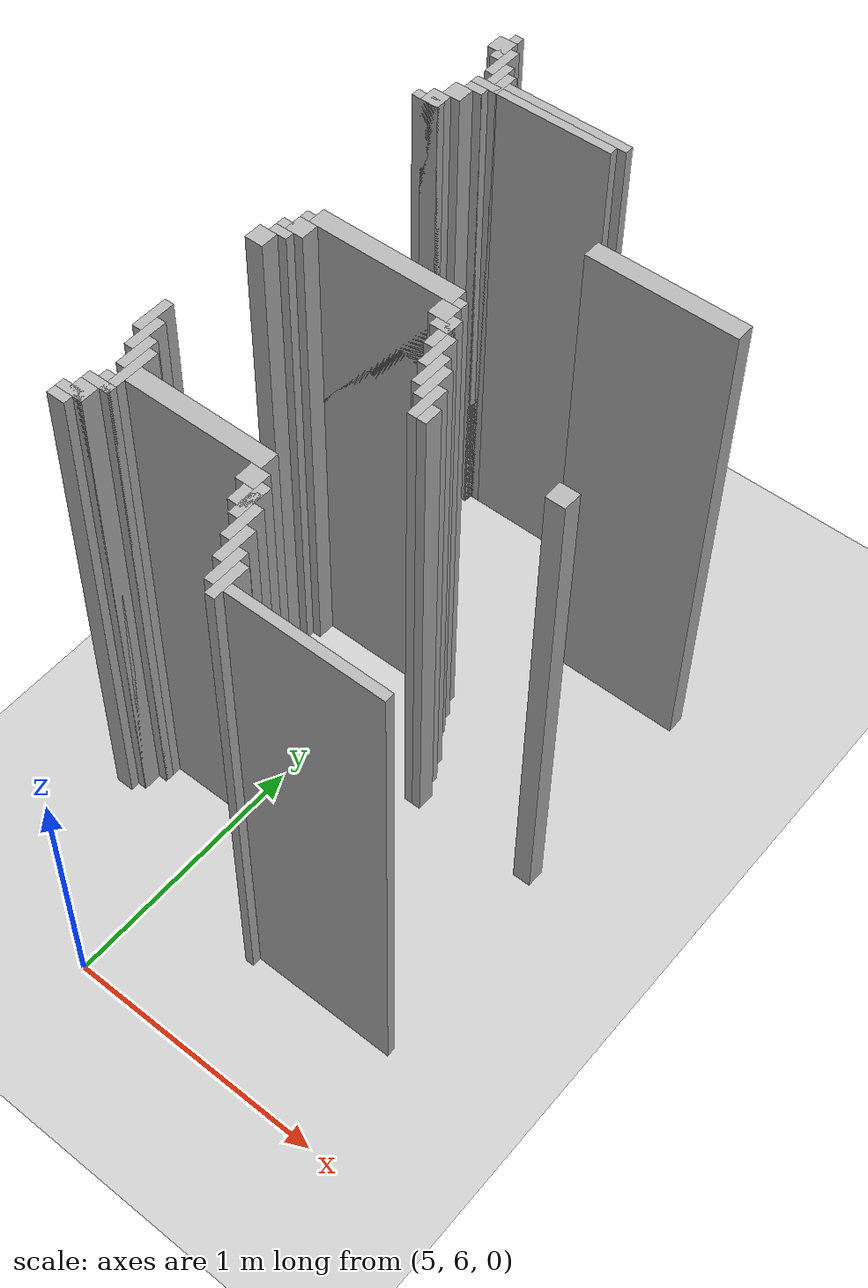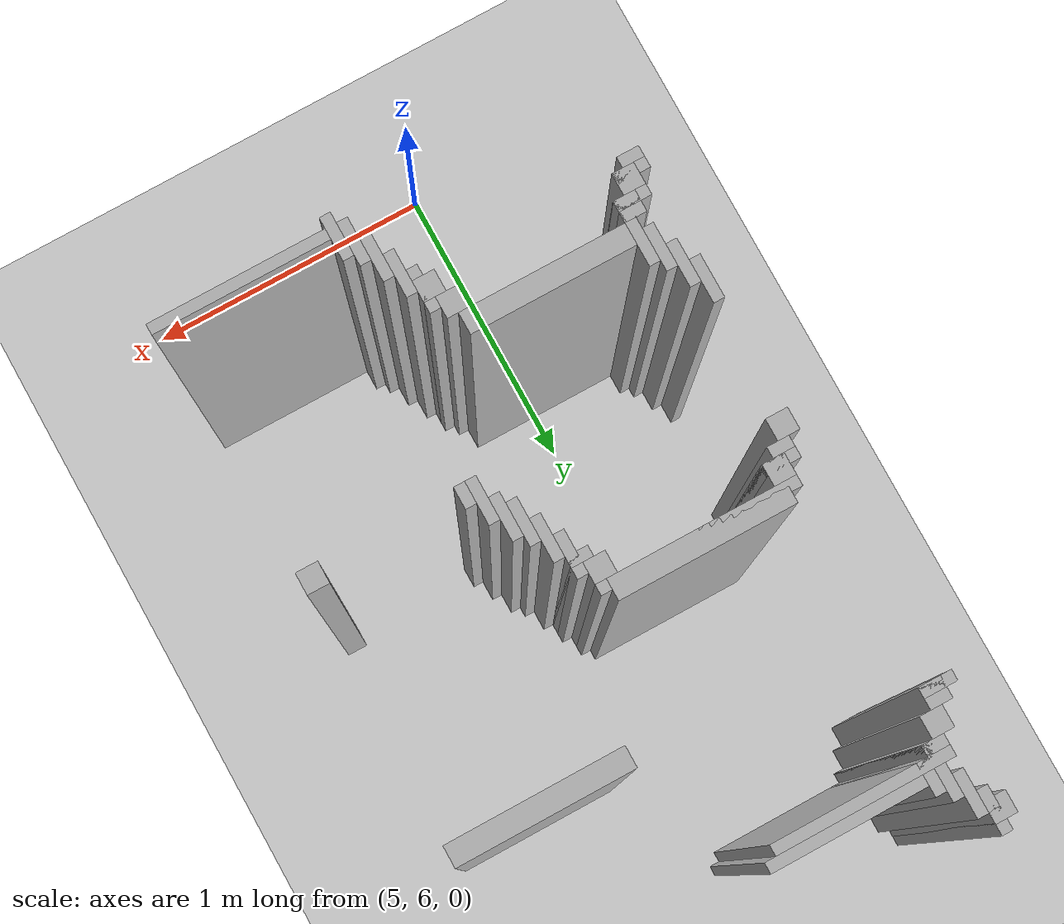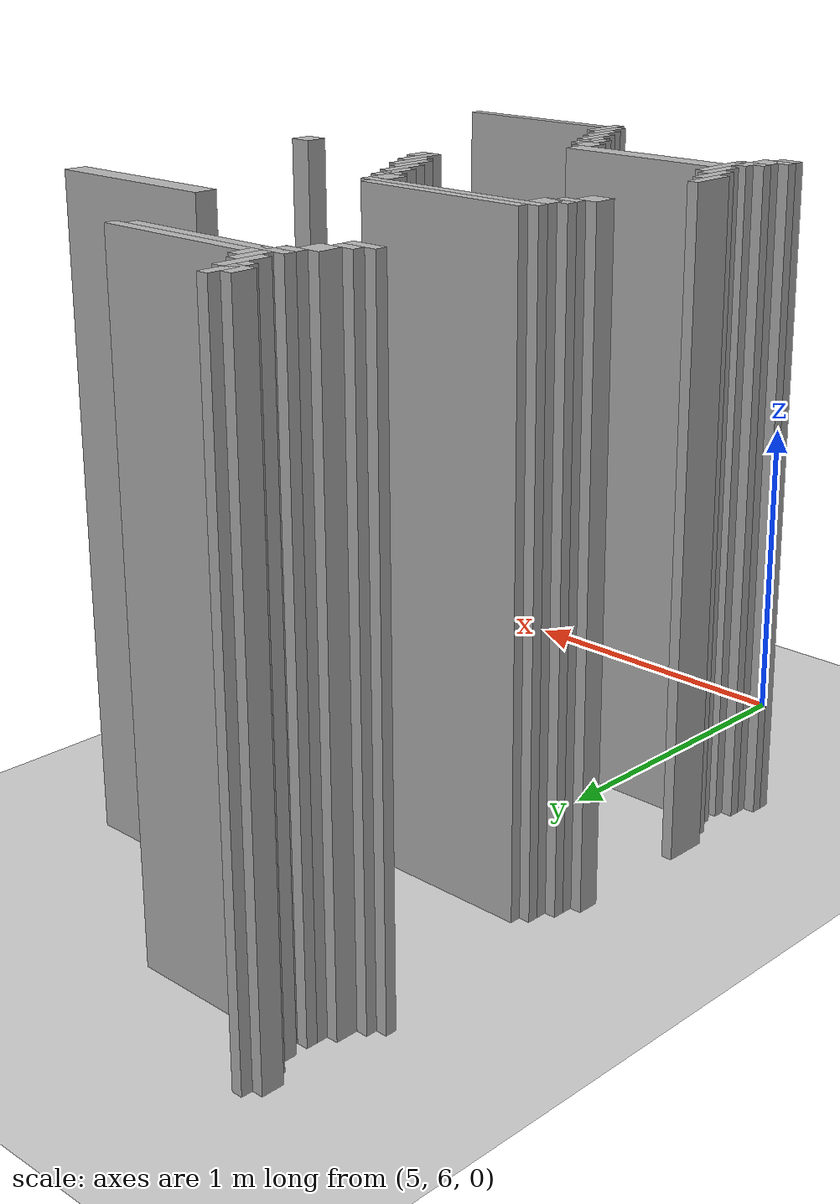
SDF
<sdf version="1.6">
 <world name="slam_world">
  <model name="ground_plane">
   <static>true</static>
   <link name="link">
    <collision name="collision">
     <geometry><plane><normal>0 0 1</normal><size>100 100</size></plane></geometry>
    </collision>
    <visual name="visual">
     <geometry><plane><normal>0 0 1</normal><size>100 100</size></plane></geometry>
     <material>
      <ambient>0.8 0.8 0.8 1</ambient>
      <diffuse>0.8 0.8 0.8 1</diffuse>
      <specular>0.8 0.8 0.8 1</specular>
     </material>
    </visual>
   </link>
  </model>
  <model name="wall_2893">
   <static>true</static>
   <pose>4.611368909512761 8.665893271461716 1.0 0 0 0</pose>
   <link name="link">
    <collision name="collision">
     <geometry><box><size>0.03480278422273782 0.13921113689095127 2.0</size></box></geometry>
    </collision>
    <visual name="visual">
     <geometry><box><size>0.03480278422273782 0.13921113689095127 2.0</size></box></geometry>
     <material><ambient>0.5 0.5 0.5 1</ambient><diffuse>0.7 0.7 0.7 1</diffuse></material>
    </visual>
   </link>
  </model>
  <model name="wall_2907">
   <static>true</static>
   <pose>4.593967517401392 8.665893271461716 1.0 0 0 0</pose>
   <link name="link">
    <collision name="collision">
     <geometry><box><size>0.06960556844547564 0.06960556844547564 2.0</size></box></geometry>
    </collision>
    <visual name="visual">
     <geometry><box><size>0.06960556844547564 0.06960556844547564 2.0</size></box></geometry>
     <material><ambient>0.5 0.5 0.5 1</ambient><diffuse>0.7 0.7 0.7 1</diffuse></material>
    </visual>
   </link>
  </model>
  <model name="wall_2919">
   <static>true</static>
   <pose>4.646171693735498 8.596287703016241 1.0 0 0 0</pose>
   <link name="link">
    <collision name="collision">
     <geometry><box><size>0.03480278422273782 0.13921113689095127 2.0</size></box></geometry>
    </collision>
    <visual name="visual">
     <geometry><box><size>0.03480278422273782 0.13921113689095127 2.0</size></box></geometry>
     <material><ambient>0.5 0.5 0.5 1</ambient><diffuse>0.7 0.7 0.7 1</diffuse></material>
    </visual>
   </link>
  </model>
  <model name="wall_2940">
   <static>true</static>
   <pose>4.6809744779582365 8.509280742459396 1.0 0 0 0</pose>
   <link name="link">
    <collision name="collision">
     <geometry><box><size>0.03480278422273782 0.17401392111368907 2.0</size></box></geometry>
    </collision>
    <visual name="visual">
     <geometry><box><size>0.03480278422273782 0.17401392111368907 2.0</size></box></geometry>
     <material><ambient>0.5 0.5 0.5 1</ambient><diffuse>0.7 0.7 0.7 1</diffuse></material>
    </visual>
   </link>
  </model>
  <model name="wall_2955">
   <static>true</static>
   <pose>4.715777262180974 8.509280742459396 1.0 0 0 0</pose>
   <link name="link">
    <collision name="collision">
     <geometry><box><size>0.03480278422273782 0.10440835266821345 2.0</size></box></geometry>
    </collision>
    <visual name="visual">
     <geometry><box><size>0.03480278422273782 0.10440835266821345 2.0</size></box></geometry>
     <material><ambient>0.5 0.5 0.5 1</ambient><diffuse>0.7 0.7 0.7 1</diffuse></material>
    </visual>
   </link>
  </model>
  <model name="wall_2968">
   <static>true</static>
   <pose>4.976798143851508 8.509280742459396 1.0 0 0 0</pose>
   <link name="link">
    <collision name="collision">
     <geometry><box><size>0.4872389791183295 0.03480278422273782 2.0</size></box></geometry>
    </collision>
    <visual name="visual">
     <geometry><box><size>0.4872389791183295 0.03480278422273782 2.0</size></box></geometry>
     <material><ambient>0.5 0.5 0.5 1</ambient><diffuse>0.7 0.7 0.7 1</diffuse></material>
    </visual>
   </link>
  </model>
  <model name="wall_2978">
   <static>true</static>
   <pose>4.907192575406032 8.474477958236658 1.0 0 0 0</pose>
   <link name="link">
    <collision name="collision">
     <geometry><box><size>0.5568445475638051 0.03480278422273782 2.0</size></box></geometry>
    </collision>
    <visual name="visual">
     <geometry><box><size>0.5568445475638051 0.03480278422273782 2.0</size></box></geometry>
     <material><ambient>0.5 0.5 0.5 1</ambient><diffuse>0.7 0.7 0.7 1</diffuse></material>
    </visual>
   </link>
  </model>
  <model name="wall_2989">
   <static>true</static>
   <pose>4.663573085846868 8.43967517401392 1.0 0 0 0</pose>
   <link name="link">
    <collision name="collision">
     <geometry><box><size>0.06960556844547564 0.03480278422273782 2.0</size></box></geometry>
    </collision>
    <visual name="visual">
     <geometry><box><size>0.06960556844547564 0.03480278422273782 2.0</size></box></geometry>
     <material><ambient>0.5 0.5 0.5 1</ambient><diffuse>0.7 0.7 0.7 1</diffuse></material>
    </visual>
   </link>
  </model>
  <model name="wall_3002">
   <static>true</static>
   <pose>4.6287703016241295 8.387470997679815 1.0 0 0 0</pose>
   <link name="link">
    <collision name="collision">
     <geometry><box><size>0.06960556844547564 0.06960556844547564 2.0</size></box></geometry>
    </collision>
    <visual name="visual">
     <geometry><box><size>0.06960556844547564 0.06960556844547564 2.0</size></box></geometry>
     <material><ambient>0.5 0.5 0.5 1</ambient><diffuse>0.7 0.7 0.7 1</diffuse></material>
    </visual>
   </link>
  </model>
  <model name="wall_3015">
   <static>true</static>
   <pose>4.593967517401392 8.317865429234338 1.0 0 0 0</pose>
   <link name="link">
    <collision name="collision">
     <geometry><box><size>0.06960556844547564 0.06960556844547564 2.0</size></box></geometry>
    </collision>
    <visual name="visual">
     <geometry><box><size>0.06960556844547564 0.06960556844547564 2.0</size></box></geometry>
     <material><ambient>0.5 0.5 0.5 1</ambient><diffuse>0.7 0.7 0.7 1</diffuse></material>
    </visual>
   </link>
  </model>
  <model name="wall_3028">
   <static>true</static>
   <pose>4.576566125290023 8.30046403712297 1.0 0 0 0</pose>
   <link name="link">
    <collision name="collision">
     <geometry><box><size>0.10440835266821345 0.03480278422273782 2.0</size></box></geometry>
    </collision>
    <visual name="visual">
     <geometry><box><size>0.10440835266821345 0.03480278422273782 2.0</size></box></geometry>
     <material><ambient>0.5 0.5 0.5 1</ambient><diffuse>0.7 0.7 0.7 1</diffuse></material>
    </visual>
   </link>
  </model>
  <model name="wall_3100">
   <static>true</static>
   <pose>5.672853828306264 8.074245939675174 1.0 0 0 0</pose>
   <link name="link">
    <collision name="collision">
     <geometry><box><size>0.5568445475638051 0.06960556844547564 2.0</size></box></geometry>
    </collision>
    <visual name="visual">
     <geometry><box><size>0.5568445475638051 0.06960556844547564 2.0</size></box></geometry>
     <material><ambient>0.5 0.5 0.5 1</ambient><diffuse>0.7 0.7 0.7 1</diffuse></material>
    </visual>
   </link>
  </model>
  <model name="wall_3182">
   <static>true</static>
   <pose>4.94199535962877 7.65661252900232 1.0 0 0 0</pose>
   <link name="link">
    <collision name="collision">
     <geometry><box><size>0.5568445475638051 0.06960556844547564 2.0</size></box></geometry>
    </collision>
    <visual name="visual">
     <geometry><box><size>0.5568445475638051 0.06960556844547564 2.0</size></box></geometry>
     <material><ambient>0.5 0.5 0.5 1</ambient><diffuse>0.7 0.7 0.7 1</diffuse></material>
    </visual>
   </link>
  </model>
  <model name="wall_3196">
   <static>true</static>
   <pose>4.94199535962877 7.6392111368909505 1.0 0 0 0</pose>
   <link name="link">
    <collision name="collision">
     <geometry><box><size>0.6264501160092807 0.03480278422273782 2.0</size></box></geometry>
    </collision>
    <visual name="visual">
     <geometry><box><size>0.6264501160092807 0.03480278422273782 2.0</size></box></geometry>
     <material><ambient>0.5 0.5 0.5 1</ambient><diffuse>0.7 0.7 0.7 1</diffuse></material>
    </visual>
   </link>
  </model>
  <model name="wall_3208">
   <static>true</static>
   <pose>4.663573085846868 7.587006960556844 1.0 0 0 0</pose>
   <link name="link">
    <collision name="collision">
     <geometry><box><size>0.06960556844547564 0.06960556844547564 2.0</size></box></geometry>
    </collision>
    <visual name="visual">
     <geometry><box><size>0.06960556844547564 0.06960556844547564 2.0</size></box></geometry>
     <material><ambient>0.5 0.5 0.5 1</ambient><diffuse>0.7 0.7 0.7 1</diffuse></material>
    </visual>
   </link>
  </model>
  <model name="wall_3209">
   <static>true</static>
   <pose>5.220417633410673 7.587006960556844 1.0 0 0 0</pose>
   <link name="link">
    <collision name="collision">
     <geometry><box><size>0.06960556844547564 0.06960556844547564 2.0</size></box></geometry>
    </collision>
    <visual name="visual">
     <geometry><box><size>0.06960556844547564 0.06960556844547564 2.0</size></box></geometry>
     <material><ambient>0.5 0.5 0.5 1</ambient><diffuse>0.7 0.7 0.7 1</diffuse></material>
    </visual>
   </link>
  </model>
  <model name="wall_3221">
   <static>true</static>
   <pose>4.646171693735498 7.569605568445476 1.0 0 0 0</pose>
   <link name="link">
    <collision name="collision">
     <geometry><box><size>0.10440835266821345 0.03480278422273782 2.0</size></box></geometry>
    </collision>
    <visual name="visual">
     <geometry><box><size>0.10440835266821345 0.03480278422273782 2.0</size></box></geometry>
     <material><ambient>0.5 0.5 0.5 1</ambient><diffuse>0.7 0.7 0.7 1</diffuse></material>
    </visual>
   </link>
  </model>
  <model name="wall_3222">
   <static>true</static>
   <pose>5.27262180974478 7.517401392111369 1.0 0 0 0</pose>
   <link name="link">
    <collision name="collision">
     <geometry><box><size>0.03480278422273782 0.13921113689095127 2.0</size></box></geometry>
    </collision>
    <visual name="visual">
     <geometry><box><size>0.03480278422273782 0.13921113689095127 2.0</size></box></geometry>
     <material><ambient>0.5 0.5 0.5 1</ambient><diffuse>0.7 0.7 0.7 1</diffuse></material>
    </visual>
   </link>
  </model>
  <model name="wall_3233">
   <static>true</static>
   <pose>4.6287703016241295 7.534802784222737 1.0 0 0 0</pose>
   <link name="link">
    <collision name="collision">
     <geometry><box><size>0.06960556844547564 0.03480278422273782 2.0</size></box></geometry>
    </collision>
    <visual name="visual">
     <geometry><box><size>0.06960556844547564 0.03480278422273782 2.0</size></box></geometry>
     <material><ambient>0.5 0.5 0.5 1</ambient><diffuse>0.7 0.7 0.7 1</diffuse></material>
    </visual>
   </link>
  </model>
  <model name="wall_3234">
   <static>true</static>
   <pose>5.25522041763341 7.534802784222737 1.0 0 0 0</pose>
   <link name="link">
    <collision name="collision">
     <geometry><box><size>0.06960556844547564 0.03480278422273782 2.0</size></box></geometry>
    </collision>
    <visual name="visual">
     <geometry><box><size>0.06960556844547564 0.03480278422273782 2.0</size></box></geometry>
     <material><ambient>0.5 0.5 0.5 1</ambient><diffuse>0.7 0.7 0.7 1</diffuse></material>
    </visual>
   </link>
  </model>
  <model name="wall_3243">
   <static>true</static>
   <pose>4.593967517401392 7.48259860788863 1.0 0 0 0</pose>
   <link name="link">
    <collision name="collision">
     <geometry><box><size>0.06960556844547564 0.06960556844547564 2.0</size></box></geometry>
    </collision>
    <visual name="visual">
     <geometry><box><size>0.06960556844547564 0.06960556844547564 2.0</size></box></geometry>
     <material><ambient>0.5 0.5 0.5 1</ambient><diffuse>0.7 0.7 0.7 1</diffuse></material>
    </visual>
   </link>
  </model>
  <model name="wall_3244">
   <static>true</static>
   <pose>5.307424593967517 7.447795823665893 1.0 0 0 0</pose>
   <link name="link">
    <collision name="collision">
     <geometry><box><size>0.03480278422273782 0.13921113689095127 2.0</size></box></geometry>
    </collision>
    <visual name="visual">
     <geometry><box><size>0.03480278422273782 0.13921113689095127 2.0</size></box></geometry>
     <material><ambient>0.5 0.5 0.5 1</ambient><diffuse>0.7 0.7 0.7 1</diffuse></material>
    </visual>
   </link>
  </model>
  <model name="wall_3257">
   <static>true</static>
   <pose>5.342227378190255 7.378190255220417 1.0 0 0 0</pose>
   <link name="link">
    <collision name="collision">
     <geometry><box><size>0.03480278422273782 0.13921113689095127 2.0</size></box></geometry>
    </collision>
    <visual name="visual">
     <geometry><box><size>0.03480278422273782 0.13921113689095127 2.0</size></box></geometry>
     <material><ambient>0.5 0.5 0.5 1</ambient><diffuse>0.7 0.7 0.7 1</diffuse></material>
    </visual>
   </link>
  </model>
  <model name="wall_3270">
   <static>true</static>
   <pose>5.377030162412993 7.34338747099768 1.0 0 0 0</pose>
   <link name="link">
    <collision name="collision">
     <geometry><box><size>0.03480278422273782 0.13921113689095127 2.0</size></box></geometry>
    </collision>
    <visual name="visual">
     <geometry><box><size>0.03480278422273782 0.13921113689095127 2.0</size></box></geometry>
     <material><ambient>0.5 0.5 0.5 1</ambient><diffuse>0.7 0.7 0.7 1</diffuse></material>
    </visual>
   </link>
  </model>
  <model name="wall_3290">
   <static>true</static>
   <pose>5.41183294663573 7.273781902552204 1.0 0 0 0</pose>
   <link name="link">
    <collision name="collision">
     <geometry><box><size>0.03480278422273782 0.13921113689095127 2.0</size></box></geometry>
    </collision>
    <visual name="visual">
     <geometry><box><size>0.03480278422273782 0.13921113689095127 2.0</size></box></geometry>
     <material><ambient>0.5 0.5 0.5 1</ambient><diffuse>0.7 0.7 0.7 1</diffuse></material>
    </visual>
   </link>
  </model>
  <model name="wall_3309">
   <static>true</static>
   <pose>5.4466357308584685 7.238979118329466 1.0 0 0 0</pose>
   <link name="link">
    <collision name="collision">
     <geometry><box><size>0.03480278422273782 0.06960556844547564 2.0</size></box></geometry>
    </collision>
    <visual name="visual">
     <geometry><box><size>0.03480278422273782 0.06960556844547564 2.0</size></box></geometry>
     <material><ambient>0.5 0.5 0.5 1</ambient><diffuse>0.7 0.7 0.7 1</diffuse></material>
    </visual>
   </link>
  </model>
  <model name="wall_3310">
   <static>true</static>
   <pose>5.916473317865429 7.238979118329466 1.0 0 0 0</pose>
   <link name="link">
    <collision name="collision">
     <geometry><box><size>0.06960556844547564 0.06960556844547564 2.0</size></box></geometry>
    </collision>
    <visual name="visual">
     <geometry><box><size>0.06960556844547564 0.06960556844547564 2.0</size></box></geometry>
     <material><ambient>0.5 0.5 0.5 1</ambient><diffuse>0.7 0.7 0.7 1</diffuse></material>
    </visual>
   </link>
  </model>
  <model name="wall_3357">
   <static>true</static>
   <pose>4.576566125290023 7.03016241299304 1.0 0 0 0</pose>
   <link name="link">
    <collision name="collision">
     <geometry><box><size>0.03480278422273782 0.13921113689095127 2.0</size></box></geometry>
    </collision>
    <visual name="visual">
     <geometry><box><size>0.03480278422273782 0.13921113689095127 2.0</size></box></geometry>
     <material><ambient>0.5 0.5 0.5 1</ambient><diffuse>0.7 0.7 0.7 1</diffuse></material>
    </visual>
   </link>
  </model>
  <model name="wall_3374">
   <static>true</static>
   <pose>4.611368909512761 6.960556844547564 1.0 0 0 0</pose>
   <link name="link">
    <collision name="collision">
     <geometry><box><size>0.03480278422273782 0.13921113689095127 2.0</size></box></geometry>
    </collision>
    <visual name="visual">
     <geometry><box><size>0.03480278422273782 0.13921113689095127 2.0</size></box></geometry>
     <material><ambient>0.5 0.5 0.5 1</ambient><diffuse>0.7 0.7 0.7 1</diffuse></material>
    </visual>
   </link>
  </model>
  <model name="wall_3391">
   <static>true</static>
   <pose>4.646171693735498 6.890951276102088 1.0 0 0 0</pose>
   <link name="link">
    <collision name="collision">
     <geometry><box><size>0.03480278422273782 0.13921113689095127 2.0</size></box></geometry>
    </collision>
    <visual name="visual">
     <geometry><box><size>0.03480278422273782 0.13921113689095127 2.0</size></box></geometry>
     <material><ambient>0.5 0.5 0.5 1</ambient><diffuse>0.7 0.7 0.7 1</diffuse></material>
    </visual>
   </link>
  </model>
  <model name="wall_3403">
   <static>true</static>
   <pose>4.6809744779582365 6.821345707656612 1.0 0 0 0</pose>
   <link name="link">
    <collision name="collision">
     <geometry><box><size>0.03480278422273782 0.2088167053364269 2.0</size></box></geometry>
    </collision>
    <visual name="visual">
     <geometry><box><size>0.03480278422273782 0.2088167053364269 2.0</size></box></geometry>
     <material><ambient>0.5 0.5 0.5 1</ambient><diffuse>0.7 0.7 0.7 1</diffuse></material>
    </visual>
   </link>
  </model>
  <model name="wall_3421">
   <static>true</static>
   <pose>4.959396751740139 6.821345707656612 1.0 0 0 0</pose>
   <link name="link">
    <collision name="collision">
     <geometry><box><size>0.5220417633410672 0.06960556844547564 2.0</size></box></geometry>
    </collision>
    <visual name="visual">
     <geometry><box><size>0.5220417633410672 0.06960556844547564 2.0</size></box></geometry>
     <material><ambient>0.5 0.5 0.5 1</ambient><diffuse>0.7 0.7 0.7 1</diffuse></material>
    </visual>
   </link>
  </model>
  <model name="wall_3442">
   <static>true</static>
   <pose>4.663573085846868 6.751740139211137 1.0 0 0 0</pose>
   <link name="link">
    <collision name="collision">
     <geometry><box><size>0.06960556844547564 0.06960556844547564 2.0</size></box></geometry>
    </collision>
    <visual name="visual">
     <geometry><box><size>0.06960556844547564 0.06960556844547564 2.0</size></box></geometry>
     <material><ambient>0.5 0.5 0.5 1</ambient><diffuse>0.7 0.7 0.7 1</diffuse></material>
    </visual>
   </link>
  </model>
  <model name="wall_3443">
   <static>true</static>
   <pose>5.220417633410673 6.751740139211137 1.0 0 0 0</pose>
   <link name="link">
    <collision name="collision">
     <geometry><box><size>0.06960556844547564 0.06960556844547564 2.0</size></box></geometry>
    </collision>
    <visual name="visual">
     <geometry><box><size>0.06960556844547564 0.06960556844547564 2.0</size></box></geometry>
     <material><ambient>0.5 0.5 0.5 1</ambient><diffuse>0.7 0.7 0.7 1</diffuse></material>
    </visual>
   </link>
  </model>
  <model name="wall_3462">
   <static>true</static>
   <pose>4.646171693735498 6.734338747099768 1.0 0 0 0</pose>
   <link name="link">
    <collision name="collision">
     <geometry><box><size>0.10440835266821345 0.03480278422273782 2.0</size></box></geometry>
    </collision>
    <visual name="visual">
     <geometry><box><size>0.10440835266821345 0.03480278422273782 2.0</size></box></geometry>
     <material><ambient>0.5 0.5 0.5 1</ambient><diffuse>0.7 0.7 0.7 1</diffuse></material>
    </visual>
   </link>
  </model>
  <model name="wall_3463">
   <static>true</static>
   <pose>5.27262180974478 6.682134570765661 1.0 0 0 0</pose>
   <link name="link">
    <collision name="collision">
     <geometry><box><size>0.03480278422273782 0.13921113689095127 2.0</size></box></geometry>
    </collision>
    <visual name="visual">
     <geometry><box><size>0.03480278422273782 0.13921113689095127 2.0</size></box></geometry>
     <material><ambient>0.5 0.5 0.5 1</ambient><diffuse>0.7 0.7 0.7 1</diffuse></material>
    </visual>
   </link>
  </model>
  <model name="wall_3482">
   <static>true</static>
   <pose>4.6287703016241295 6.682134570765661 1.0 0 0 0</pose>
   <link name="link">
    <collision name="collision">
     <geometry><box><size>0.06960556844547564 0.06960556844547564 2.0</size></box></geometry>
    </collision>
    <visual name="visual">
     <geometry><box><size>0.06960556844547564 0.06960556844547564 2.0</size></box></geometry>
     <material><ambient>0.5 0.5 0.5 1</ambient><diffuse>0.7 0.7 0.7 1</diffuse></material>
    </visual>
   </link>
  </model>
  <model name="wall_3483">
   <static>true</static>
   <pose>5.25522041763341 6.682134570765661 1.0 0 0 0</pose>
   <link name="link">
    <collision name="collision">
     <geometry><box><size>0.06960556844547564 0.06960556844547564 2.0</size></box></geometry>
    </collision>
    <visual name="visual">
     <geometry><box><size>0.06960556844547564 0.06960556844547564 2.0</size></box></geometry>
     <material><ambient>0.5 0.5 0.5 1</ambient><diffuse>0.7 0.7 0.7 1</diffuse></material>
    </visual>
   </link>
  </model>
  <model name="wall_3502">
   <static>true</static>
   <pose>4.611368909512761 6.664733178654292 1.0 0 0 0</pose>
   <link name="link">
    <collision name="collision">
     <geometry><box><size>0.10440835266821345 0.03480278422273782 2.0</size></box></geometry>
    </collision>
    <visual name="visual">
     <geometry><box><size>0.10440835266821345 0.03480278422273782 2.0</size></box></geometry>
     <material><ambient>0.5 0.5 0.5 1</ambient><diffuse>0.7 0.7 0.7 1</diffuse></material>
    </visual>
   </link>
  </model>
  <model name="wall_3503">
   <static>true</static>
   <pose>5.307424593967517 6.612529002320185 1.0 0 0 0</pose>
   <link name="link">
    <collision name="collision">
     <geometry><box><size>0.03480278422273782 0.13921113689095127 2.0</size></box></geometry>
    </collision>
    <visual name="visual">
     <geometry><box><size>0.03480278422273782 0.13921113689095127 2.0</size></box></geometry>
     <material><ambient>0.5 0.5 0.5 1</ambient><diffuse>0.7 0.7 0.7 1</diffuse></material>
    </visual>
   </link>
  </model>
  <model name="wall_3519">
   <static>true</static>
   <pose>4.593967517401392 6.629930394431554 1.0 0 0 0</pose>
   <link name="link">
    <collision name="collision">
     <geometry><box><size>0.06960556844547564 0.03480278422273782 2.0</size></box></geometry>
    </collision>
    <visual name="visual">
     <geometry><box><size>0.06960556844547564 0.03480278422273782 2.0</size></box></geometry>
     <material><ambient>0.5 0.5 0.5 1</ambient><diffuse>0.7 0.7 0.7 1</diffuse></material>
    </visual>
   </link>
  </model>
  <model name="wall_3533">
   <static>true</static>
   <pose>5.342227378190255 6.5429234338747095 1.0 0 0 0</pose>
   <link name="link">
    <collision name="collision">
     <geometry><box><size>0.03480278422273782 0.13921113689095127 2.0</size></box></geometry>
    </collision>
    <visual name="visual">
     <geometry><box><size>0.03480278422273782 0.13921113689095127 2.0</size></box></geometry>
     <material><ambient>0.5 0.5 0.5 1</ambient><diffuse>0.7 0.7 0.7 1</diffuse></material>
    </visual>
   </link>
  </model>
  <model name="wall_3553">
   <static>true</static>
   <pose>5.377030162412993 6.473317865429234 1.0 0 0 0</pose>
   <link name="link">
    <collision name="collision">
     <geometry><box><size>0.03480278422273782 0.13921113689095127 2.0</size></box></geometry>
    </collision>
    <visual name="visual">
     <geometry><box><size>0.03480278422273782 0.13921113689095127 2.0</size></box></geometry>
     <material><ambient>0.5 0.5 0.5 1</ambient><diffuse>0.7 0.7 0.7 1</diffuse></material>
    </visual>
   </link>
  </model>
  <model name="wall_3573">
   <static>true</static>
   <pose>5.41183294663573 6.438515081206496 1.0 0 0 0</pose>
   <link name="link">
    <collision name="collision">
     <geometry><box><size>0.03480278422273782 0.13921113689095127 2.0</size></box></geometry>
    </collision>
    <visual name="visual">
     <geometry><box><size>0.03480278422273782 0.13921113689095127 2.0</size></box></geometry>
     <material><ambient>0.5 0.5 0.5 1</ambient><diffuse>0.7 0.7 0.7 1</diffuse></material>
    </visual>
   </link>
  </model>
  <model name="wall_3601">
   <static>true</static>
   <pose>5.707656612529002 6.421113689095128 1.0 0 0 0</pose>
   <link name="link">
    <collision name="collision">
     <geometry><box><size>0.5568445475638051 0.03480278422273782 2.0</size></box></geometry>
    </collision>
    <visual name="visual">
     <geometry><box><size>0.5568445475638051 0.03480278422273782 2.0</size></box></geometry>
     <material><ambient>0.5 0.5 0.5 1</ambient><diffuse>0.7 0.7 0.7 1</diffuse></material>
    </visual>
   </link>
  </model>
 </world>
</sdf>
